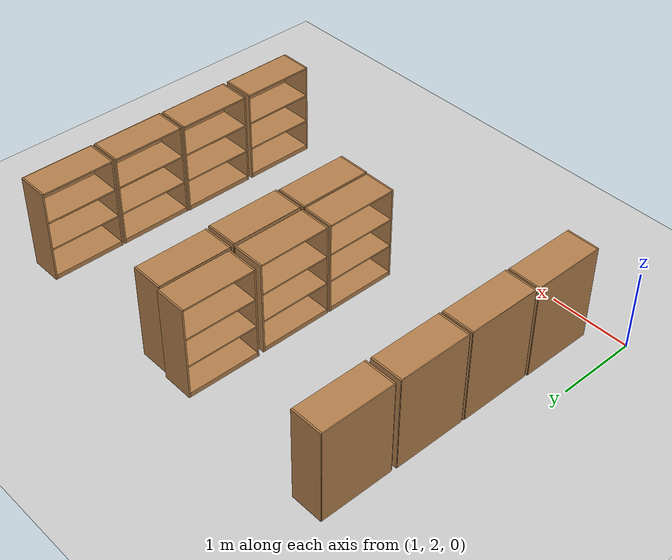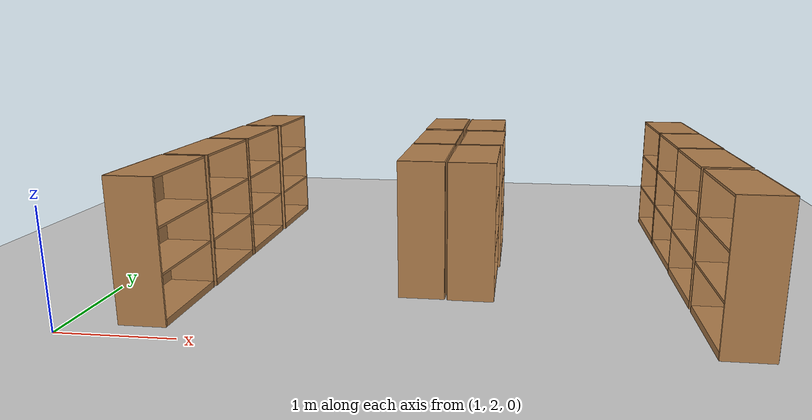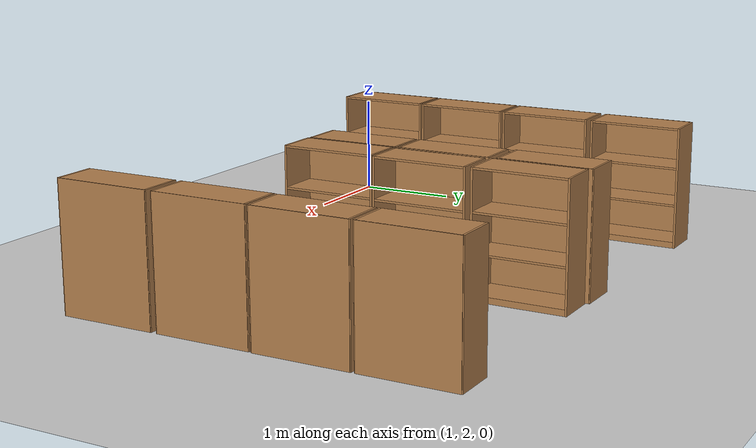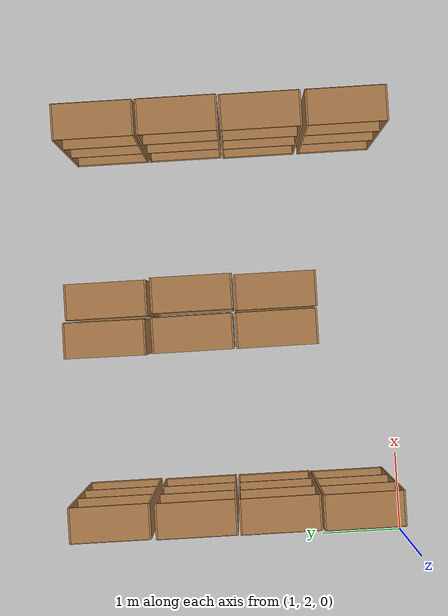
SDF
<sdf version="1.6">
 <world name="default">
  <model name="ground_plane">
   <static>1</static>
   <link name="link">
    <collision name="collision">
     <geometry><plane><normal>0 0 1</normal><size>100 100</size></plane></geometry>
     <surface>
      <contact><collide_bitmask>65535</collide_bitmask></contact>
      <friction><ode><mu>100</mu><mu2>50</mu2></ode></friction>
     </surface>
    </collision>
    <visual name="visual">
     <cast_shadows>0</cast_shadows>
     <geometry><plane><normal>0 0 1</normal><size>100 100</size></plane></geometry>
     <material>
      <script><uri>file://media/materials/scripts/gazebo.material</uri><name>Gazebo/Grey</name></script>
     </material>
    </visual>
   </link>
  </model>
  <model name="bookshelf_clone_98">
   <static>1</static>
   <link name="link">
    <inertial><mass>1</mass></inertial>
    <collision name="back">
     <pose>0 0.005 0.6 0 -0 0</pose>
     <geometry><box><size>0.9 0.01 1.2</size></box></geometry>
    </collision>
    <visual name="visual1">
     <pose>0 0.005 0.6 0 -0 0</pose>
     <geometry><box><size>0.9 0.01 1.2</size></box></geometry>
     <material>
      <script><uri>file://media/materials/scripts/gazebo.material</uri><name>Gazebo/Wood</name></script>
     </material>
    </visual>
    <collision name="left_side">
     <pose>0.45 -0.195 0.6 0 -0 0</pose>
     <geometry><box><size>0.02 0.4 1.2</size></box></geometry>
    </collision>
    <visual name="visual2">
     <pose>0.45 -0.195 0.6 0 -0 0</pose>
     <geometry><box><size>0.02 0.4 1.2</size></box></geometry>
     <material>
      <script><uri>file://media/materials/scripts/gazebo.material</uri><name>Gazebo/Wood</name></script>
     </material>
    </visual>
    <collision name="right_side">
     <pose>-0.45 -0.195 0.6 0 -0 0</pose>
     <geometry><box><size>0.02 0.4 1.2</size></box></geometry>
    </collision>
    <visual name="visual3">
     <pose>-0.45 -0.195 0.6 0 -0 0</pose>
     <geometry><box><size>0.02 0.4 1.2</size></box></geometry>
     <material>
      <script><uri>file://media/materials/scripts/gazebo.material</uri><name>Gazebo/Wood</name></script>
     </material>
    </visual>
    <collision name="bottom">
     <pose>0 -0.195 0.03 0 -0 0</pose>
     <geometry><box><size>0.88 0.4 0.06</size></box></geometry>
    </collision>
    <visual name="visual4">
     <pose>0 -0.195 0.03 0 -0 0</pose>
     <geometry><box><size>0.88 0.4 0.06</size></box></geometry>
     <material>
      <script><uri>file://media/materials/scripts/gazebo.material</uri><name>Gazebo/Wood</name></script>
     </material>
    </visual>
    <collision name="top">
     <pose>0 -0.195 1.19 0 -0 0</pose>
     <geometry><box><size>0.88 0.4 0.02</size></box></geometry>
    </collision>
    <visual name="visual5">
     <pose>0 -0.195 1.19 0 -0 0</pose>
     <geometry><box><size>0.88 0.4 0.02</size></box></geometry>
     <material>
      <script><uri>file://media/materials/scripts/gazebo.material</uri><name>Gazebo/Wood</name></script>
     </material>
    </visual>
    <collision name="low_shelf">
     <pose>0 -0.195 0.43 0 -0 0</pose>
     <geometry><box><size>0.88 0.4 0.02</size></box></geometry>
    </collision>
    <visual name="visual6">
     <pose>0 -0.195 0.43 0 -0 0</pose>
     <geometry><box><size>0.88 0.4 0.02</size></box></geometry>
     <material>
      <script><uri>file://media/materials/scripts/gazebo.material</uri><name>Gazebo/Wood</name></script>
     </material>
    </visual>
    <collision name="high_shelf">
     <pose>0 -0.195 0.8 0 -0 0</pose>
     <geometry><box><size>0.88 0.4 0.02</size></box></geometry>
    </collision>
    <visual name="visual7">
     <pose>0 -0.195 0.8 0 -0 0</pose>
     <geometry><box><size>0.88 0.4 0.02</size></box></geometry>
     <material>
      <script><uri>file://media/materials/scripts/gazebo.material</uri><name>Gazebo/Wood</name></script>
     </material>
    </visual>
   </link>
   <pose>6.34995 5.42884 0 0 0 -1.57004</pose>
  </model>
  <model name="bookshelf_clone_108">
   <static>1</static>
   <link name="link">
    <inertial><mass>1</mass></inertial>
    <collision name="back">
     <pose>0 0.005 0.6 0 -0 0</pose>
     <geometry><box><size>0.9 0.01 1.2</size></box></geometry>
    </collision>
    <visual name="visual1">
     <pose>0 0.005 0.6 0 -0 0</pose>
     <geometry><box><size>0.9 0.01 1.2</size></box></geometry>
     <material>
      <script><uri>file://media/materials/scripts/gazebo.material</uri><name>Gazebo/Wood</name></script>
     </material>
    </visual>
    <collision name="left_side">
     <pose>0.45 -0.195 0.6 0 -0 0</pose>
     <geometry><box><size>0.02 0.4 1.2</size></box></geometry>
    </collision>
    <visual name="visual2">
     <pose>0.45 -0.195 0.6 0 -0 0</pose>
     <geometry><box><size>0.02 0.4 1.2</size></box></geometry>
     <material>
      <script><uri>file://media/materials/scripts/gazebo.material</uri><name>Gazebo/Wood</name></script>
     </material>
    </visual>
    <collision name="right_side">
     <pose>-0.45 -0.195 0.6 0 -0 0</pose>
     <geometry><box><size>0.02 0.4 1.2</size></box></geometry>
    </collision>
    <visual name="visual3">
     <pose>-0.45 -0.195 0.6 0 -0 0</pose>
     <geometry><box><size>0.02 0.4 1.2</size></box></geometry>
     <material>
      <script><uri>file://media/materials/scripts/gazebo.material</uri><name>Gazebo/Wood</name></script>
     </material>
    </visual>
    <collision name="bottom">
     <pose>0 -0.195 0.03 0 -0 0</pose>
     <geometry><box><size>0.88 0.4 0.06</size></box></geometry>
    </collision>
    <visual name="visual4">
     <pose>0 -0.195 0.03 0 -0 0</pose>
     <geometry><box><size>0.88 0.4 0.06</size></box></geometry>
     <material>
      <script><uri>file://media/materials/scripts/gazebo.material</uri><name>Gazebo/Wood</name></script>
     </material>
    </visual>
    <collision name="top">
     <pose>0 -0.195 1.19 0 -0 0</pose>
     <geometry><box><size>0.88 0.4 0.02</size></box></geometry>
    </collision>
    <visual name="visual5">
     <pose>0 -0.195 1.19 0 -0 0</pose>
     <geometry><box><size>0.88 0.4 0.02</size></box></geometry>
     <material>
      <script><uri>file://media/materials/scripts/gazebo.material</uri><name>Gazebo/Wood</name></script>
     </material>
    </visual>
    <collision name="low_shelf">
     <pose>0 -0.195 0.43 0 -0 0</pose>
     <geometry><box><size>0.88 0.4 0.02</size></box></geometry>
    </collision>
    <visual name="visual6">
     <pose>0 -0.195 0.43 0 -0 0</pose>
     <geometry><box><size>0.88 0.4 0.02</size></box></geometry>
     <material>
      <script><uri>file://media/materials/scripts/gazebo.material</uri><name>Gazebo/Wood</name></script>
     </material>
    </visual>
    <collision name="high_shelf">
     <pose>0 -0.195 0.8 0 -0 0</pose>
     <geometry><box><size>0.88 0.4 0.02</size></box></geometry>
    </collision>
    <visual name="visual7">
     <pose>0 -0.195 0.8 0 -0 0</pose>
     <geometry><box><size>0.88 0.4 0.02</size></box></geometry>
     <material>
      <script><uri>file://media/materials/scripts/gazebo.material</uri><name>Gazebo/Wood</name></script>
     </material>
    </visual>
   </link>
   <pose>3.90587 4.45304 0 0 0 -1.57004</pose>
  </model>
  <model name="bookshelf_clone_109">
   <static>1</static>
   <link name="link">
    <inertial><mass>1</mass></inertial>
    <collision name="back">
     <pose>0 0.005 0.6 0 -0 0</pose>
     <geometry><box><size>0.9 0.01 1.2</size></box></geometry>
    </collision>
    <visual name="visual1">
     <pose>0 0.005 0.6 0 -0 0</pose>
     <geometry><box><size>0.9 0.01 1.2</size></box></geometry>
     <material>
      <script><uri>file://media/materials/scripts/gazebo.material</uri><name>Gazebo/Wood</name></script>
     </material>
    </visual>
    <collision name="left_side">
     <pose>0.45 -0.195 0.6 0 -0 0</pose>
     <geometry><box><size>0.02 0.4 1.2</size></box></geometry>
    </collision>
    <visual name="visual2">
     <pose>0.45 -0.195 0.6 0 -0 0</pose>
     <geometry><box><size>0.02 0.4 1.2</size></box></geometry>
     <material>
      <script><uri>file://media/materials/scripts/gazebo.material</uri><name>Gazebo/Wood</name></script>
     </material>
    </visual>
    <collision name="right_side">
     <pose>-0.45 -0.195 0.6 0 -0 0</pose>
     <geometry><box><size>0.02 0.4 1.2</size></box></geometry>
    </collision>
    <visual name="visual3">
     <pose>-0.45 -0.195 0.6 0 -0 0</pose>
     <geometry><box><size>0.02 0.4 1.2</size></box></geometry>
     <material>
      <script><uri>file://media/materials/scripts/gazebo.material</uri><name>Gazebo/Wood</name></script>
     </material>
    </visual>
    <collision name="bottom">
     <pose>0 -0.195 0.03 0 -0 0</pose>
     <geometry><box><size>0.88 0.4 0.06</size></box></geometry>
    </collision>
    <visual name="visual4">
     <pose>0 -0.195 0.03 0 -0 0</pose>
     <geometry><box><size>0.88 0.4 0.06</size></box></geometry>
     <material>
      <script><uri>file://media/materials/scripts/gazebo.material</uri><name>Gazebo/Wood</name></script>
     </material>
    </visual>
    <collision name="top">
     <pose>0 -0.195 1.19 0 -0 0</pose>
     <geometry><box><size>0.88 0.4 0.02</size></box></geometry>
    </collision>
    <visual name="visual5">
     <pose>0 -0.195 1.19 0 -0 0</pose>
     <geometry><box><size>0.88 0.4 0.02</size></box></geometry>
     <material>
      <script><uri>file://media/materials/scripts/gazebo.material</uri><name>Gazebo/Wood</name></script>
     </material>
    </visual>
    <collision name="low_shelf">
     <pose>0 -0.195 0.43 0 -0 0</pose>
     <geometry><box><size>0.88 0.4 0.02</size></box></geometry>
    </collision>
    <visual name="visual6">
     <pose>0 -0.195 0.43 0 -0 0</pose>
     <geometry><box><size>0.88 0.4 0.02</size></box></geometry>
     <material>
      <script><uri>file://media/materials/scripts/gazebo.material</uri><name>Gazebo/Wood</name></script>
     </material>
    </visual>
    <collision name="high_shelf">
     <pose>0 -0.195 0.8 0 -0 0</pose>
     <geometry><box><size>0.88 0.4 0.02</size></box></geometry>
    </collision>
    <visual name="visual7">
     <pose>0 -0.195 0.8 0 -0 0</pose>
     <geometry><box><size>0.88 0.4 0.02</size></box></geometry>
     <material>
      <script><uri>file://media/materials/scripts/gazebo.material</uri><name>Gazebo/Wood</name></script>
     </material>
    </visual>
   </link>
   <pose>3.90591 3.51234 0 0 0 -1.57004</pose>
  </model>
  <model name="bookshelf_clone_115">
   <static>1</static>
   <link name="link">
    <inertial><mass>1</mass></inertial>
    <collision name="back">
     <pose>0 0.005 0.6 0 -0 0</pose>
     <geometry><box><size>0.9 0.01 1.2</size></box></geometry>
    </collision>
    <visual name="visual1">
     <pose>0 0.005 0.6 0 -0 0</pose>
     <geometry><box><size>0.9 0.01 1.2</size></box></geometry>
     <material>
      <script><uri>file://media/materials/scripts/gazebo.material</uri><name>Gazebo/Wood</name></script>
     </material>
    </visual>
    <collision name="left_side">
     <pose>0.45 -0.195 0.6 0 -0 0</pose>
     <geometry><box><size>0.02 0.4 1.2</size></box></geometry>
    </collision>
    <visual name="visual2">
     <pose>0.45 -0.195 0.6 0 -0 0</pose>
     <geometry><box><size>0.02 0.4 1.2</size></box></geometry>
     <material>
      <script><uri>file://media/materials/scripts/gazebo.material</uri><name>Gazebo/Wood</name></script>
     </material>
    </visual>
    <collision name="right_side">
     <pose>-0.45 -0.195 0.6 0 -0 0</pose>
     <geometry><box><size>0.02 0.4 1.2</size></box></geometry>
    </collision>
    <visual name="visual3">
     <pose>-0.45 -0.195 0.6 0 -0 0</pose>
     <geometry><box><size>0.02 0.4 1.2</size></box></geometry>
     <material>
      <script><uri>file://media/materials/scripts/gazebo.material</uri><name>Gazebo/Wood</name></script>
     </material>
    </visual>
    <collision name="bottom">
     <pose>0 -0.195 0.03 0 -0 0</pose>
     <geometry><box><size>0.88 0.4 0.06</size></box></geometry>
    </collision>
    <visual name="visual4">
     <pose>0 -0.195 0.03 0 -0 0</pose>
     <geometry><box><size>0.88 0.4 0.06</size></box></geometry>
     <material>
      <script><uri>file://media/materials/scripts/gazebo.material</uri><name>Gazebo/Wood</name></script>
     </material>
    </visual>
    <collision name="top">
     <pose>0 -0.195 1.19 0 -0 0</pose>
     <geometry><box><size>0.88 0.4 0.02</size></box></geometry>
    </collision>
    <visual name="visual5">
     <pose>0 -0.195 1.19 0 -0 0</pose>
     <geometry><box><size>0.88 0.4 0.02</size></box></geometry>
     <material>
      <script><uri>file://media/materials/scripts/gazebo.material</uri><name>Gazebo/Wood</name></script>
     </material>
    </visual>
    <collision name="low_shelf">
     <pose>0 -0.195 0.43 0 -0 0</pose>
     <geometry><box><size>0.88 0.4 0.02</size></box></geometry>
    </collision>
    <visual name="visual6">
     <pose>0 -0.195 0.43 0 -0 0</pose>
     <geometry><box><size>0.88 0.4 0.02</size></box></geometry>
     <material>
      <script><uri>file://media/materials/scripts/gazebo.material</uri><name>Gazebo/Wood</name></script>
     </material>
    </visual>
    <collision name="high_shelf">
     <pose>0 -0.195 0.8 0 -0 0</pose>
     <geometry><box><size>0.88 0.4 0.02</size></box></geometry>
    </collision>
    <visual name="visual7">
     <pose>0 -0.195 0.8 0 -0 0</pose>
     <geometry><box><size>0.88 0.4 0.02</size></box></geometry>
     <material>
      <script><uri>file://media/materials/scripts/gazebo.material</uri><name>Gazebo/Wood</name></script>
     </material>
    </visual>
   </link>
   <pose>6.351 4.48596 0 0 0 -1.57004</pose>
  </model>
  <model name="bookshelf_clone_116">
   <static>1</static>
   <link name="link">
    <inertial><mass>1</mass></inertial>
    <collision name="back">
     <pose>0 0.005 0.6 0 -0 0</pose>
     <geometry><box><size>0.9 0.01 1.2</size></box></geometry>
    </collision>
    <visual name="visual1">
     <pose>0 0.005 0.6 0 -0 0</pose>
     <geometry><box><size>0.9 0.01 1.2</size></box></geometry>
     <material>
      <script><uri>file://media/materials/scripts/gazebo.material</uri><name>Gazebo/Wood</name></script>
     </material>
    </visual>
    <collision name="left_side">
     <pose>0.45 -0.195 0.6 0 -0 0</pose>
     <geometry><box><size>0.02 0.4 1.2</size></box></geometry>
    </collision>
    <visual name="visual2">
     <pose>0.45 -0.195 0.6 0 -0 0</pose>
     <geometry><box><size>0.02 0.4 1.2</size></box></geometry>
     <material>
      <script><uri>file://media/materials/scripts/gazebo.material</uri><name>Gazebo/Wood</name></script>
     </material>
    </visual>
    <collision name="right_side">
     <pose>-0.45 -0.195 0.6 0 -0 0</pose>
     <geometry><box><size>0.02 0.4 1.2</size></box></geometry>
    </collision>
    <visual name="visual3">
     <pose>-0.45 -0.195 0.6 0 -0 0</pose>
     <geometry><box><size>0.02 0.4 1.2</size></box></geometry>
     <material>
      <script><uri>file://media/materials/scripts/gazebo.material</uri><name>Gazebo/Wood</name></script>
     </material>
    </visual>
    <collision name="bottom">
     <pose>0 -0.195 0.03 0 -0 0</pose>
     <geometry><box><size>0.88 0.4 0.06</size></box></geometry>
    </collision>
    <visual name="visual4">
     <pose>0 -0.195 0.03 0 -0 0</pose>
     <geometry><box><size>0.88 0.4 0.06</size></box></geometry>
     <material>
      <script><uri>file://media/materials/scripts/gazebo.material</uri><name>Gazebo/Wood</name></script>
     </material>
    </visual>
    <collision name="top">
     <pose>0 -0.195 1.19 0 -0 0</pose>
     <geometry><box><size>0.88 0.4 0.02</size></box></geometry>
    </collision>
    <visual name="visual5">
     <pose>0 -0.195 1.19 0 -0 0</pose>
     <geometry><box><size>0.88 0.4 0.02</size></box></geometry>
     <material>
      <script><uri>file://media/materials/scripts/gazebo.material</uri><name>Gazebo/Wood</name></script>
     </material>
    </visual>
    <collision name="low_shelf">
     <pose>0 -0.195 0.43 0 -0 0</pose>
     <geometry><box><size>0.88 0.4 0.02</size></box></geometry>
    </collision>
    <visual name="visual6">
     <pose>0 -0.195 0.43 0 -0 0</pose>
     <geometry><box><size>0.88 0.4 0.02</size></box></geometry>
     <material>
      <script><uri>file://media/materials/scripts/gazebo.material</uri><name>Gazebo/Wood</name></script>
     </material>
    </visual>
    <collision name="high_shelf">
     <pose>0 -0.195 0.8 0 -0 0</pose>
     <geometry><box><size>0.88 0.4 0.02</size></box></geometry>
    </collision>
    <visual name="visual7">
     <pose>0 -0.195 0.8 0 -0 0</pose>
     <geometry><box><size>0.88 0.4 0.02</size></box></geometry>
     <material>
      <script><uri>file://media/materials/scripts/gazebo.material</uri><name>Gazebo/Wood</name></script>
     </material>
    </visual>
   </link>
   <pose>6.34368 3.5484 0 0 0 -1.57004</pose>
  </model>
  <model name="bookshelf_clone_117">
   <static>1</static>
   <link name="link">
    <inertial><mass>1</mass></inertial>
    <collision name="back">
     <pose>0 0.005 0.6 0 -0 0</pose>
     <geometry><box><size>0.9 0.01 1.2</size></box></geometry>
    </collision>
    <visual name="visual1">
     <pose>0 0.005 0.6 0 -0 0</pose>
     <geometry><box><size>0.9 0.01 1.2</size></box></geometry>
     <material>
      <script><uri>file://media/materials/scripts/gazebo.material</uri><name>Gazebo/Wood</name></script>
     </material>
    </visual>
    <collision name="left_side">
     <pose>0.45 -0.195 0.6 0 -0 0</pose>
     <geometry><box><size>0.02 0.4 1.2</size></box></geometry>
    </collision>
    <visual name="visual2">
     <pose>0.45 -0.195 0.6 0 -0 0</pose>
     <geometry><box><size>0.02 0.4 1.2</size></box></geometry>
     <material>
      <script><uri>file://media/materials/scripts/gazebo.material</uri><name>Gazebo/Wood</name></script>
     </material>
    </visual>
    <collision name="right_side">
     <pose>-0.45 -0.195 0.6 0 -0 0</pose>
     <geometry><box><size>0.02 0.4 1.2</size></box></geometry>
    </collision>
    <visual name="visual3">
     <pose>-0.45 -0.195 0.6 0 -0 0</pose>
     <geometry><box><size>0.02 0.4 1.2</size></box></geometry>
     <material>
      <script><uri>file://media/materials/scripts/gazebo.material</uri><name>Gazebo/Wood</name></script>
     </material>
    </visual>
    <collision name="bottom">
     <pose>0 -0.195 0.03 0 -0 0</pose>
     <geometry><box><size>0.88 0.4 0.06</size></box></geometry>
    </collision>
    <visual name="visual4">
     <pose>0 -0.195 0.03 0 -0 0</pose>
     <geometry><box><size>0.88 0.4 0.06</size></box></geometry>
     <material>
      <script><uri>file://media/materials/scripts/gazebo.material</uri><name>Gazebo/Wood</name></script>
     </material>
    </visual>
    <collision name="top">
     <pose>0 -0.195 1.19 0 -0 0</pose>
     <geometry><box><size>0.88 0.4 0.02</size></box></geometry>
    </collision>
    <visual name="visual5">
     <pose>0 -0.195 1.19 0 -0 0</pose>
     <geometry><box><size>0.88 0.4 0.02</size></box></geometry>
     <material>
      <script><uri>file://media/materials/scripts/gazebo.material</uri><name>Gazebo/Wood</name></script>
     </material>
    </visual>
    <collision name="low_shelf">
     <pose>0 -0.195 0.43 0 -0 0</pose>
     <geometry><box><size>0.88 0.4 0.02</size></box></geometry>
    </collision>
    <visual name="visual6">
     <pose>0 -0.195 0.43 0 -0 0</pose>
     <geometry><box><size>0.88 0.4 0.02</size></box></geometry>
     <material>
      <script><uri>file://media/materials/scripts/gazebo.material</uri><name>Gazebo/Wood</name></script>
     </material>
    </visual>
    <collision name="high_shelf">
     <pose>0 -0.195 0.8 0 -0 0</pose>
     <geometry><box><size>0.88 0.4 0.02</size></box></geometry>
    </collision>
    <visual name="visual7">
     <pose>0 -0.195 0.8 0 -0 0</pose>
     <geometry><box><size>0.88 0.4 0.02</size></box></geometry>
     <material>
      <script><uri>file://media/materials/scripts/gazebo.material</uri><name>Gazebo/Wood</name></script>
     </material>
    </visual>
   </link>
   <pose>6.34372 2.58136 0 0 0 -1.57004</pose>
  </model>
  <model name="bookshelf_clone_122">
   <static>1</static>
   <link name="link">
    <inertial><mass>1</mass></inertial>
    <collision name="back">
     <pose>0 0.005 0.6 0 -0 0</pose>
     <geometry><box><size>0.9 0.01 1.2</size></box></geometry>
    </collision>
    <visual name="visual1">
     <pose>0 0.005 0.6 0 -0 0</pose>
     <geometry><box><size>0.9 0.01 1.2</size></box></geometry>
     <material>
      <script><uri>file://media/materials/scripts/gazebo.material</uri><name>Gazebo/Wood</name></script>
     </material>
    </visual>
    <collision name="left_side">
     <pose>0.45 -0.195 0.6 0 -0 0</pose>
     <geometry><box><size>0.02 0.4 1.2</size></box></geometry>
    </collision>
    <visual name="visual2">
     <pose>0.45 -0.195 0.6 0 -0 0</pose>
     <geometry><box><size>0.02 0.4 1.2</size></box></geometry>
     <material>
      <script><uri>file://media/materials/scripts/gazebo.material</uri><name>Gazebo/Wood</name></script>
     </material>
    </visual>
    <collision name="right_side">
     <pose>-0.45 -0.195 0.6 0 -0 0</pose>
     <geometry><box><size>0.02 0.4 1.2</size></box></geometry>
    </collision>
    <visual name="visual3">
     <pose>-0.45 -0.195 0.6 0 -0 0</pose>
     <geometry><box><size>0.02 0.4 1.2</size></box></geometry>
     <material>
      <script><uri>file://media/materials/scripts/gazebo.material</uri><name>Gazebo/Wood</name></script>
     </material>
    </visual>
    <collision name="bottom">
     <pose>0 -0.195 0.03 0 -0 0</pose>
     <geometry><box><size>0.88 0.4 0.06</size></box></geometry>
    </collision>
    <visual name="visual4">
     <pose>0 -0.195 0.03 0 -0 0</pose>
     <geometry><box><size>0.88 0.4 0.06</size></box></geometry>
     <material>
      <script><uri>file://media/materials/scripts/gazebo.material</uri><name>Gazebo/Wood</name></script>
     </material>
    </visual>
    <collision name="top">
     <pose>0 -0.195 1.19 0 -0 0</pose>
     <geometry><box><size>0.88 0.4 0.02</size></box></geometry>
    </collision>
    <visual name="visual5">
     <pose>0 -0.195 1.19 0 -0 0</pose>
     <geometry><box><size>0.88 0.4 0.02</size></box></geometry>
     <material>
      <script><uri>file://media/materials/scripts/gazebo.material</uri><name>Gazebo/Wood</name></script>
     </material>
    </visual>
    <collision name="low_shelf">
     <pose>0 -0.195 0.43 0 -0 0</pose>
     <geometry><box><size>0.88 0.4 0.02</size></box></geometry>
    </collision>
    <visual name="visual6">
     <pose>0 -0.195 0.43 0 -0 0</pose>
     <geometry><box><size>0.88 0.4 0.02</size></box></geometry>
     <material>
      <script><uri>file://media/materials/scripts/gazebo.material</uri><name>Gazebo/Wood</name></script>
     </material>
    </visual>
    <collision name="high_shelf">
     <pose>0 -0.195 0.8 0 -0 0</pose>
     <geometry><box><size>0.88 0.4 0.02</size></box></geometry>
    </collision>
    <visual name="visual7">
     <pose>0 -0.195 0.8 0 -0 0</pose>
     <geometry><box><size>0.88 0.4 0.02</size></box></geometry>
     <material>
      <script><uri>file://media/materials/scripts/gazebo.material</uri><name>Gazebo/Wood</name></script>
     </material>
    </visual>
   </link>
   <pose>1.4544 5.50502 0 0 -0 1.56949</pose>
  </model>
  <model name="bookshelf_clone_123">
   <static>1</static>
   <link name="link">
    <inertial><mass>1</mass></inertial>
    <collision name="back">
     <pose>0 0.005 0.6 0 -0 0</pose>
     <geometry><box><size>0.9 0.01 1.2</size></box></geometry>
    </collision>
    <visual name="visual1">
     <pose>0 0.005 0.6 0 -0 0</pose>
     <geometry><box><size>0.9 0.01 1.2</size></box></geometry>
     <material>
      <script><uri>file://media/materials/scripts/gazebo.material</uri><name>Gazebo/Wood</name></script>
     </material>
    </visual>
    <collision name="left_side">
     <pose>0.45 -0.195 0.6 0 -0 0</pose>
     <geometry><box><size>0.02 0.4 1.2</size></box></geometry>
    </collision>
    <visual name="visual2">
     <pose>0.45 -0.195 0.6 0 -0 0</pose>
     <geometry><box><size>0.02 0.4 1.2</size></box></geometry>
     <material>
      <script><uri>file://media/materials/scripts/gazebo.material</uri><name>Gazebo/Wood</name></script>
     </material>
    </visual>
    <collision name="right_side">
     <pose>-0.45 -0.195 0.6 0 -0 0</pose>
     <geometry><box><size>0.02 0.4 1.2</size></box></geometry>
    </collision>
    <visual name="visual3">
     <pose>-0.45 -0.195 0.6 0 -0 0</pose>
     <geometry><box><size>0.02 0.4 1.2</size></box></geometry>
     <material>
      <script><uri>file://media/materials/scripts/gazebo.material</uri><name>Gazebo/Wood</name></script>
     </material>
    </visual>
    <collision name="bottom">
     <pose>0 -0.195 0.03 0 -0 0</pose>
     <geometry><box><size>0.88 0.4 0.06</size></box></geometry>
    </collision>
    <visual name="visual4">
     <pose>0 -0.195 0.03 0 -0 0</pose>
     <geometry><box><size>0.88 0.4 0.06</size></box></geometry>
     <material>
      <script><uri>file://media/materials/scripts/gazebo.material</uri><name>Gazebo/Wood</name></script>
     </material>
    </visual>
    <collision name="top">
     <pose>0 -0.195 1.19 0 -0 0</pose>
     <geometry><box><size>0.88 0.4 0.02</size></box></geometry>
    </collision>
    <visual name="visual5">
     <pose>0 -0.195 1.19 0 -0 0</pose>
     <geometry><box><size>0.88 0.4 0.02</size></box></geometry>
     <material>
      <script><uri>file://media/materials/scripts/gazebo.material</uri><name>Gazebo/Wood</name></script>
     </material>
    </visual>
    <collision name="low_shelf">
     <pose>0 -0.195 0.43 0 -0 0</pose>
     <geometry><box><size>0.88 0.4 0.02</size></box></geometry>
    </collision>
    <visual name="visual6">
     <pose>0 -0.195 0.43 0 -0 0</pose>
     <geometry><box><size>0.88 0.4 0.02</size></box></geometry>
     <material>
      <script><uri>file://media/materials/scripts/gazebo.material</uri><name>Gazebo/Wood</name></script>
     </material>
    </visual>
    <collision name="high_shelf">
     <pose>0 -0.195 0.8 0 -0 0</pose>
     <geometry><box><size>0.88 0.4 0.02</size></box></geometry>
    </collision>
    <visual name="visual7">
     <pose>0 -0.195 0.8 0 -0 0</pose>
     <geometry><box><size>0.88 0.4 0.02</size></box></geometry>
     <material>
      <script><uri>file://media/materials/scripts/gazebo.material</uri><name>Gazebo/Wood</name></script>
     </material>
    </visual>
   </link>
   <pose>1.44403 4.53555 0 0 -0 1.56949</pose>
  </model>
  <model name="bookshelf_clone_124">
   <static>1</static>
   <link name="link">
    <inertial><mass>1</mass></inertial>
    <collision name="back">
     <pose>0 0.005 0.6 0 -0 0</pose>
     <geometry><box><size>0.9 0.01 1.2</size></box></geometry>
    </collision>
    <visual name="visual1">
     <pose>0 0.005 0.6 0 -0 0</pose>
     <geometry><box><size>0.9 0.01 1.2</size></box></geometry>
     <material>
      <script><uri>file://media/materials/scripts/gazebo.material</uri><name>Gazebo/Wood</name></script>
     </material>
    </visual>
    <collision name="left_side">
     <pose>0.45 -0.195 0.6 0 -0 0</pose>
     <geometry><box><size>0.02 0.4 1.2</size></box></geometry>
    </collision>
    <visual name="visual2">
     <pose>0.45 -0.195 0.6 0 -0 0</pose>
     <geometry><box><size>0.02 0.4 1.2</size></box></geometry>
     <material>
      <script><uri>file://media/materials/scripts/gazebo.material</uri><name>Gazebo/Wood</name></script>
     </material>
    </visual>
    <collision name="right_side">
     <pose>-0.45 -0.195 0.6 0 -0 0</pose>
     <geometry><box><size>0.02 0.4 1.2</size></box></geometry>
    </collision>
    <visual name="visual3">
     <pose>-0.45 -0.195 0.6 0 -0 0</pose>
     <geometry><box><size>0.02 0.4 1.2</size></box></geometry>
     <material>
      <script><uri>file://media/materials/scripts/gazebo.material</uri><name>Gazebo/Wood</name></script>
     </material>
    </visual>
    <collision name="bottom">
     <pose>0 -0.195 0.03 0 -0 0</pose>
     <geometry><box><size>0.88 0.4 0.06</size></box></geometry>
    </collision>
    <visual name="visual4">
     <pose>0 -0.195 0.03 0 -0 0</pose>
     <geometry><box><size>0.88 0.4 0.06</size></box></geometry>
     <material>
      <script><uri>file://media/materials/scripts/gazebo.material</uri><name>Gazebo/Wood</name></script>
     </material>
    </visual>
    <collision name="top">
     <pose>0 -0.195 1.19 0 -0 0</pose>
     <geometry><box><size>0.88 0.4 0.02</size></box></geometry>
    </collision>
    <visual name="visual5">
     <pose>0 -0.195 1.19 0 -0 0</pose>
     <geometry><box><size>0.88 0.4 0.02</size></box></geometry>
     <material>
      <script><uri>file://media/materials/scripts/gazebo.material</uri><name>Gazebo/Wood</name></script>
     </material>
    </visual>
    <collision name="low_shelf">
     <pose>0 -0.195 0.43 0 -0 0</pose>
     <geometry><box><size>0.88 0.4 0.02</size></box></geometry>
    </collision>
    <visual name="visual6">
     <pose>0 -0.195 0.43 0 -0 0</pose>
     <geometry><box><size>0.88 0.4 0.02</size></box></geometry>
     <material>
      <script><uri>file://media/materials/scripts/gazebo.material</uri><name>Gazebo/Wood</name></script>
     </material>
    </visual>
    <collision name="high_shelf">
     <pose>0 -0.195 0.8 0 -0 0</pose>
     <geometry><box><size>0.88 0.4 0.02</size></box></geometry>
    </collision>
    <visual name="visual7">
     <pose>0 -0.195 0.8 0 -0 0</pose>
     <geometry><box><size>0.88 0.4 0.02</size></box></geometry>
     <material>
      <script><uri>file://media/materials/scripts/gazebo.material</uri><name>Gazebo/Wood</name></script>
     </material>
    </visual>
   </link>
   <pose>1.43885 3.59195 0 0 -0 1.56949</pose>
  </model>
  <model name="bookshelf_clone_125">
   <static>1</static>
   <link name="link">
    <inertial><mass>1</mass></inertial>
    <collision name="back">
     <pose>0 0.005 0.6 0 -0 0</pose>
     <geometry><box><size>0.9 0.01 1.2</size></box></geometry>
    </collision>
    <visual name="visual1">
     <pose>0 0.005 0.6 0 -0 0</pose>
     <geometry><box><size>0.9 0.01 1.2</size></box></geometry>
     <material>
      <script><uri>file://media/materials/scripts/gazebo.material</uri><name>Gazebo/Wood</name></script>
     </material>
    </visual>
    <collision name="left_side">
     <pose>0.45 -0.195 0.6 0 -0 0</pose>
     <geometry><box><size>0.02 0.4 1.2</size></box></geometry>
    </collision>
    <visual name="visual2">
     <pose>0.45 -0.195 0.6 0 -0 0</pose>
     <geometry><box><size>0.02 0.4 1.2</size></box></geometry>
     <material>
      <script><uri>file://media/materials/scripts/gazebo.material</uri><name>Gazebo/Wood</name></script>
     </material>
    </visual>
    <collision name="right_side">
     <pose>-0.45 -0.195 0.6 0 -0 0</pose>
     <geometry><box><size>0.02 0.4 1.2</size></box></geometry>
    </collision>
    <visual name="visual3">
     <pose>-0.45 -0.195 0.6 0 -0 0</pose>
     <geometry><box><size>0.02 0.4 1.2</size></box></geometry>
     <material>
      <script><uri>file://media/materials/scripts/gazebo.material</uri><name>Gazebo/Wood</name></script>
     </material>
    </visual>
    <collision name="bottom">
     <pose>0 -0.195 0.03 0 -0 0</pose>
     <geometry><box><size>0.88 0.4 0.06</size></box></geometry>
    </collision>
    <visual name="visual4">
     <pose>0 -0.195 0.03 0 -0 0</pose>
     <geometry><box><size>0.88 0.4 0.06</size></box></geometry>
     <material>
      <script><uri>file://media/materials/scripts/gazebo.material</uri><name>Gazebo/Wood</name></script>
     </material>
    </visual>
    <collision name="top">
     <pose>0 -0.195 1.19 0 -0 0</pose>
     <geometry><box><size>0.88 0.4 0.02</size></box></geometry>
    </collision>
    <visual name="visual5">
     <pose>0 -0.195 1.19 0 -0 0</pose>
     <geometry><box><size>0.88 0.4 0.02</size></box></geometry>
     <material>
      <script><uri>file://media/materials/scripts/gazebo.material</uri><name>Gazebo/Wood</name></script>
     </material>
    </visual>
    <collision name="low_shelf">
     <pose>0 -0.195 0.43 0 -0 0</pose>
     <geometry><box><size>0.88 0.4 0.02</size></box></geometry>
    </collision>
    <visual name="visual6">
     <pose>0 -0.195 0.43 0 -0 0</pose>
     <geometry><box><size>0.88 0.4 0.02</size></box></geometry>
     <material>
      <script><uri>file://media/materials/scripts/gazebo.material</uri><name>Gazebo/Wood</name></script>
     </material>
    </visual>
    <collision name="high_shelf">
     <pose>0 -0.195 0.8 0 -0 0</pose>
     <geometry><box><size>0.88 0.4 0.02</size></box></geometry>
    </collision>
    <visual name="visual7">
     <pose>0 -0.195 0.8 0 -0 0</pose>
     <geometry><box><size>0.88 0.4 0.02</size></box></geometry>
     <material>
      <script><uri>file://media/materials/scripts/gazebo.material</uri><name>Gazebo/Wood</name></script>
     </material>
    </visual>
   </link>
   <pose>1.42833 2.65086 0 0 -0 1.56949</pose>
  </model>
  <model name="bookshelf_clone_130">
   <static>1</static>
   <link name="link">
    <inertial><mass>1</mass></inertial>
    <collision name="back">
     <pose>0 0.005 0.6 0 -0 0</pose>
     <geometry><box><size>0.9 0.01 1.2</size></box></geometry>
    </collision>
    <visual name="visual1">
     <pose>0 0.005 0.6 0 -0 0</pose>
     <geometry><box><size>0.9 0.01 1.2</size></box></geometry>
     <material>
      <script><uri>file://media/materials/scripts/gazebo.material</uri><name>Gazebo/Wood</name></script>
     </material>
    </visual>
    <collision name="left_side">
     <pose>0.45 -0.195 0.6 0 -0 0</pose>
     <geometry><box><size>0.02 0.4 1.2</size></box></geometry>
    </collision>
    <visual name="visual2">
     <pose>0.45 -0.195 0.6 0 -0 0</pose>
     <geometry><box><size>0.02 0.4 1.2</size></box></geometry>
     <material>
      <script><uri>file://media/materials/scripts/gazebo.material</uri><name>Gazebo/Wood</name></script>
     </material>
    </visual>
    <collision name="right_side">
     <pose>-0.45 -0.195 0.6 0 -0 0</pose>
     <geometry><box><size>0.02 0.4 1.2</size></box></geometry>
    </collision>
    <visual name="visual3">
     <pose>-0.45 -0.195 0.6 0 -0 0</pose>
     <geometry><box><size>0.02 0.4 1.2</size></box></geometry>
     <material>
      <script><uri>file://media/materials/scripts/gazebo.material</uri><name>Gazebo/Wood</name></script>
     </material>
    </visual>
    <collision name="bottom">
     <pose>0 -0.195 0.03 0 -0 0</pose>
     <geometry><box><size>0.88 0.4 0.06</size></box></geometry>
    </collision>
    <visual name="visual4">
     <pose>0 -0.195 0.03 0 -0 0</pose>
     <geometry><box><size>0.88 0.4 0.06</size></box></geometry>
     <material>
      <script><uri>file://media/materials/scripts/gazebo.material</uri><name>Gazebo/Wood</name></script>
     </material>
    </visual>
    <collision name="top">
     <pose>0 -0.195 1.19 0 -0 0</pose>
     <geometry><box><size>0.88 0.4 0.02</size></box></geometry>
    </collision>
    <visual name="visual5">
     <pose>0 -0.195 1.19 0 -0 0</pose>
     <geometry><box><size>0.88 0.4 0.02</size></box></geometry>
     <material>
      <script><uri>file://media/materials/scripts/gazebo.material</uri><name>Gazebo/Wood</name></script>
     </material>
    </visual>
    <collision name="low_shelf">
     <pose>0 -0.195 0.43 0 -0 0</pose>
     <geometry><box><size>0.88 0.4 0.02</size></box></geometry>
    </collision>
    <visual name="visual6">
     <pose>0 -0.195 0.43 0 -0 0</pose>
     <geometry><box><size>0.88 0.4 0.02</size></box></geometry>
     <material>
      <script><uri>file://media/materials/scripts/gazebo.material</uri><name>Gazebo/Wood</name></script>
     </material>
    </visual>
    <collision name="high_shelf">
     <pose>0 -0.195 0.8 0 -0 0</pose>
     <geometry><box><size>0.88 0.4 0.02</size></box></geometry>
    </collision>
    <visual name="visual7">
     <pose>0 -0.195 0.8 0 -0 0</pose>
     <geometry><box><size>0.88 0.4 0.02</size></box></geometry>
     <material>
      <script><uri>file://media/materials/scripts/gazebo.material</uri><name>Gazebo/Wood</name></script>
     </material>
    </visual>
   </link>
   <pose>3.94455 5.39945 0 0 -0 1.56949</pose>
  </model>
  <model name="bookshelf_clone_131">
   <static>1</static>
   <link name="link">
    <inertial><mass>1</mass></inertial>
    <collision name="back">
     <pose>0 0.005 0.6 0 -0 0</pose>
     <geometry><box><size>0.9 0.01 1.2</size></box></geometry>
    </collision>
    <visual name="visual1">
     <pose>0 0.005 0.6 0 -0 0</pose>
     <geometry><box><size>0.9 0.01 1.2</size></box></geometry>
     <material>
      <script><uri>file://media/materials/scripts/gazebo.material</uri><name>Gazebo/Wood</name></script>
     </material>
    </visual>
    <collision name="left_side">
     <pose>0.45 -0.195 0.6 0 -0 0</pose>
     <geometry><box><size>0.02 0.4 1.2</size></box></geometry>
    </collision>
    <visual name="visual2">
     <pose>0.45 -0.195 0.6 0 -0 0</pose>
     <geometry><box><size>0.02 0.4 1.2</size></box></geometry>
     <material>
      <script><uri>file://media/materials/scripts/gazebo.material</uri><name>Gazebo/Wood</name></script>
     </material>
    </visual>
    <collision name="right_side">
     <pose>-0.45 -0.195 0.6 0 -0 0</pose>
     <geometry><box><size>0.02 0.4 1.2</size></box></geometry>
    </collision>
    <visual name="visual3">
     <pose>-0.45 -0.195 0.6 0 -0 0</pose>
     <geometry><box><size>0.02 0.4 1.2</size></box></geometry>
     <material>
      <script><uri>file://media/materials/scripts/gazebo.material</uri><name>Gazebo/Wood</name></script>
     </material>
    </visual>
    <collision name="bottom">
     <pose>0 -0.195 0.03 0 -0 0</pose>
     <geometry><box><size>0.88 0.4 0.06</size></box></geometry>
    </collision>
    <visual name="visual4">
     <pose>0 -0.195 0.03 0 -0 0</pose>
     <geometry><box><size>0.88 0.4 0.06</size></box></geometry>
     <material>
      <script><uri>file://media/materials/scripts/gazebo.material</uri><name>Gazebo/Wood</name></script>
     </material>
    </visual>
    <collision name="top">
     <pose>0 -0.195 1.19 0 -0 0</pose>
     <geometry><box><size>0.88 0.4 0.02</size></box></geometry>
    </collision>
    <visual name="visual5">
     <pose>0 -0.195 1.19 0 -0 0</pose>
     <geometry><box><size>0.88 0.4 0.02</size></box></geometry>
     <material>
      <script><uri>file://media/materials/scripts/gazebo.material</uri><name>Gazebo/Wood</name></script>
     </material>
    </visual>
    <collision name="low_shelf">
     <pose>0 -0.195 0.43 0 -0 0</pose>
     <geometry><box><size>0.88 0.4 0.02</size></box></geometry>
    </collision>
    <visual name="visual6">
     <pose>0 -0.195 0.43 0 -0 0</pose>
     <geometry><box><size>0.88 0.4 0.02</size></box></geometry>
     <material>
      <script><uri>file://media/materials/scripts/gazebo.material</uri><name>Gazebo/Wood</name></script>
     </material>
    </visual>
    <collision name="high_shelf">
     <pose>0 -0.195 0.8 0 -0 0</pose>
     <geometry><box><size>0.88 0.4 0.02</size></box></geometry>
    </collision>
    <visual name="visual7">
     <pose>0 -0.195 0.8 0 -0 0</pose>
     <geometry><box><size>0.88 0.4 0.02</size></box></geometry>
     <material>
      <script><uri>file://media/materials/scripts/gazebo.material</uri><name>Gazebo/Wood</name></script>
     </material>
    </visual>
   </link>
   <pose>3.9631 4.43955 0 0 -0 1.56949</pose>
  </model>
  <model name="bookshelf_clone_132">
   <static>1</static>
   <link name="link">
    <inertial><mass>1</mass></inertial>
    <collision name="back">
     <pose>0 0.005 0.6 0 -0 0</pose>
     <geometry><box><size>0.9 0.01 1.2</size></box></geometry>
    </collision>
    <visual name="visual1">
     <pose>0 0.005 0.6 0 -0 0</pose>
     <geometry><box><size>0.9 0.01 1.2</size></box></geometry>
     <material>
      <script><uri>file://media/materials/scripts/gazebo.material</uri><name>Gazebo/Wood</name></script>
     </material>
    </visual>
    <collision name="left_side">
     <pose>0.45 -0.195 0.6 0 -0 0</pose>
     <geometry><box><size>0.02 0.4 1.2</size></box></geometry>
    </collision>
    <visual name="visual2">
     <pose>0.45 -0.195 0.6 0 -0 0</pose>
     <geometry><box><size>0.02 0.4 1.2</size></box></geometry>
     <material>
      <script><uri>file://media/materials/scripts/gazebo.material</uri><name>Gazebo/Wood</name></script>
     </material>
    </visual>
    <collision name="right_side">
     <pose>-0.45 -0.195 0.6 0 -0 0</pose>
     <geometry><box><size>0.02 0.4 1.2</size></box></geometry>
    </collision>
    <visual name="visual3">
     <pose>-0.45 -0.195 0.6 0 -0 0</pose>
     <geometry><box><size>0.02 0.4 1.2</size></box></geometry>
     <material>
      <script><uri>file://media/materials/scripts/gazebo.material</uri><name>Gazebo/Wood</name></script>
     </material>
    </visual>
    <collision name="bottom">
     <pose>0 -0.195 0.03 0 -0 0</pose>
     <geometry><box><size>0.88 0.4 0.06</size></box></geometry>
    </collision>
    <visual name="visual4">
     <pose>0 -0.195 0.03 0 -0 0</pose>
     <geometry><box><size>0.88 0.4 0.06</size></box></geometry>
     <material>
      <script><uri>file://media/materials/scripts/gazebo.material</uri><name>Gazebo/Wood</name></script>
     </material>
    </visual>
    <collision name="top">
     <pose>0 -0.195 1.19 0 -0 0</pose>
     <geometry><box><size>0.88 0.4 0.02</size></box></geometry>
    </collision>
    <visual name="visual5">
     <pose>0 -0.195 1.19 0 -0 0</pose>
     <geometry><box><size>0.88 0.4 0.02</size></box></geometry>
     <material>
      <script><uri>file://media/materials/scripts/gazebo.material</uri><name>Gazebo/Wood</name></script>
     </material>
    </visual>
    <collision name="low_shelf">
     <pose>0 -0.195 0.43 0 -0 0</pose>
     <geometry><box><size>0.88 0.4 0.02</size></box></geometry>
    </collision>
    <visual name="visual6">
     <pose>0 -0.195 0.43 0 -0 0</pose>
     <geometry><box><size>0.88 0.4 0.02</size></box></geometry>
     <material>
      <script><uri>file://media/materials/scripts/gazebo.material</uri><name>Gazebo/Wood</name></script>
     </material>
    </visual>
    <collision name="high_shelf">
     <pose>0 -0.195 0.8 0 -0 0</pose>
     <geometry><box><size>0.88 0.4 0.02</size></box></geometry>
    </collision>
    <visual name="visual7">
     <pose>0 -0.195 0.8 0 -0 0</pose>
     <geometry><box><size>0.88 0.4 0.02</size></box></geometry>
     <material>
      <script><uri>file://media/materials/scripts/gazebo.material</uri><name>Gazebo/Wood</name></script>
     </material>
    </visual>
   </link>
   <pose>3.94205 3.502 0 0 -0 1.56949</pose>
  </model>
  <model name="bookshelf_clone_99">
   <static>1</static>
   <link name="link">
    <inertial><mass>1</mass></inertial>
    <collision name="back">
     <pose>0 0.005 0.6 0 -0 0</pose>
     <geometry><box><size>0.9 0.01 1.2</size></box></geometry>
    </collision>
    <visual name="visual1">
     <pose>0 0.005 0.6 0 -0 0</pose>
     <geometry><box><size>0.9 0.01 1.2</size></box></geometry>
     <material>
      <script><uri>file://media/materials/scripts/gazebo.material</uri><name>Gazebo/Wood</name></script>
     </material>
    </visual>
    <collision name="left_side">
     <pose>0.45 -0.195 0.6 0 -0 0</pose>
     <geometry><box><size>0.02 0.4 1.2</size></box></geometry>
    </collision>
    <visual name="visual2">
     <pose>0.45 -0.195 0.6 0 -0 0</pose>
     <geometry><box><size>0.02 0.4 1.2</size></box></geometry>
     <material>
      <script><uri>file://media/materials/scripts/gazebo.material</uri><name>Gazebo/Wood</name></script>
     </material>
    </visual>
    <collision name="right_side">
     <pose>-0.45 -0.195 0.6 0 -0 0</pose>
     <geometry><box><size>0.02 0.4 1.2</size></box></geometry>
    </collision>
    <visual name="visual3">
     <pose>-0.45 -0.195 0.6 0 -0 0</pose>
     <geometry><box><size>0.02 0.4 1.2</size></box></geometry>
     <material>
      <script><uri>file://media/materials/scripts/gazebo.material</uri><name>Gazebo/Wood</name></script>
     </material>
    </visual>
    <collision name="bottom">
     <pose>0 -0.195 0.03 0 -0 0</pose>
     <geometry><box><size>0.88 0.4 0.06</size></box></geometry>
    </collision>
    <visual name="visual4">
     <pose>0 -0.195 0.03 0 -0 0</pose>
     <geometry><box><size>0.88 0.4 0.06</size></box></geometry>
     <material>
      <script><uri>file://media/materials/scripts/gazebo.material</uri><name>Gazebo/Wood</name></script>
     </material>
    </visual>
    <collision name="top">
     <pose>0 -0.195 1.19 0 -0 0</pose>
     <geometry><box><size>0.88 0.4 0.02</size></box></geometry>
    </collision>
    <visual name="visual5">
     <pose>0 -0.195 1.19 0 -0 0</pose>
     <geometry><box><size>0.88 0.4 0.02</size></box></geometry>
     <material>
      <script><uri>file://media/materials/scripts/gazebo.material</uri><name>Gazebo/Wood</name></script>
     </material>
    </visual>
    <collision name="low_shelf">
     <pose>0 -0.195 0.43 0 -0 0</pose>
     <geometry><box><size>0.88 0.4 0.02</size></box></geometry>
    </collision>
    <visual name="visual6">
     <pose>0 -0.195 0.43 0 -0 0</pose>
     <geometry><box><size>0.88 0.4 0.02</size></box></geometry>
     <material>
      <script><uri>file://media/materials/scripts/gazebo.material</uri><name>Gazebo/Wood</name></script>
     </material>
    </visual>
    <collision name="high_shelf">
     <pose>0 -0.195 0.8 0 -0 0</pose>
     <geometry><box><size>0.88 0.4 0.02</size></box></geometry>
    </collision>
    <visual name="visual7">
     <pose>0 -0.195 0.8 0 -0 0</pose>
     <geometry><box><size>0.88 0.4 0.02</size></box></geometry>
     <material>
      <script><uri>file://media/materials/scripts/gazebo.material</uri><name>Gazebo/Wood</name></script>
     </material>
    </visual>
   </link>
   <pose>3.90078 5.43709 0 0 0 -1.57936</pose>
  </model>
 </world>
</sdf>
